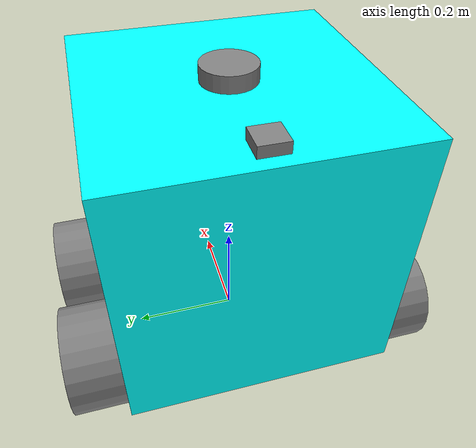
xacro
<?xml version="1.0" ?>
<!-- |    This document was autogenerated by xacro from /home/orion/IEEE_SEC_HW_Competition/sec_test_dev_humble_ws/install/sec_description/share/sec_description/description/sec_description.urdf.xacro | -->
<!-- |    EDITING THIS FILE BY HAND IS NOT RECOMMENDED                                 | -->
<robot name="sec_bot">
	<!-- Specify some standard inertial calculations https://en.wikipedia.org/wiki/List_of_moments_of_inertia -->
	<!-- These make use of xacro's mathematical functionality -->
	<!-- Base Footprint -->
	<link name="base_link">

    </link>
	<!-- Robot Base -->
	<link name="chassis">
		<visual>
			<origin rpy="0 0 0" xyz="0 0 0.25"/>
			<geometry>
				<box size="0.5 0.5 0.5"/>
			</geometry>
			<material name="Cyan">
				<color rgba="0 1.0 1.0 1.0"/>
			</material>
		</visual>
		<collision>
			<origin rpy="0 0 0" xyz="0 0 0.25"/>
			<geometry>
				<box size="0.5 0.5 0.5"/>
			</geometry>
		</collision>
		<inertial>
			<origin rpy="0 0 0" xyz="0 0 0.25"/>
			<mass value="10"/>
			<inertia ixx="0.41666666666666663" ixy="0.0" ixz="0.0" iyy="0.41666666666666663" iyz="0.0" izz="0.41666666666666663"/>
		</inertial>
	</link>
	<joint name="base_joint" type="fixed">
		<parent link="base_link"/>
		<child link="chassis"/>
		<origin rpy="0 0 0" xyz="0.0 0.0 0.05"/>
	</joint>
	<link name="b_l_wheel_link">
		<visual>
			<origin rpy="1.5707963267948966 0 0" xyz="0 0 0"/>
			<geometry>
				<cylinder length="0.1" radius="0.1"/>
			</geometry>
			<material name="Gray">
				<color rgba="0.5 0.5 0.5 1.0"/>
			</material>
		</visual>
		<collision>
			<origin rpy="1.5707963267948966 0 0" xyz="0 0 0"/>
			<geometry>
				<cylinder length="0.1" radius="0.1"/>
			</geometry>
		</collision>
		<inertial>
			<origin rpy="1.5707963267948966 0 0" xyz="0 0 0"/>
			<mass value="10"/>
			<inertia ixx="0.03333333333333334" ixy="0.0" ixz="0.0" iyy="0.03333333333333334" iyz="0.0" izz="0.05000000000000001"/>
		</inertial>
	</link>
	<joint name="b_l_wheel_joint" type="continuous">
		<parent link="chassis"/>
		<child link="b_l_wheel_link"/>
		<origin rpy="0 0 0" xyz="-0.125 0.3 0.03"/>
		<axis xyz="0 1 0"/>
	</joint>
	<gazebo reference="b_l_wheel_link">
		<material>Gazebo/Blue</material>
	</gazebo>
	<link name="b_r_wheel_link">
		<visual>
			<origin rpy="1.5707963267948966 0 0" xyz="0 0 0"/>
			<geometry>
				<cylinder length="0.1" radius="0.1"/>
			</geometry>
			<material name="Gray">
				<color rgba="0.5 0.5 0.5 1.0"/>
			</material>
		</visual>
		<collision>
			<origin rpy="1.5707963267948966 0 0" xyz="0 0 0"/>
			<geometry>
				<cylinder length="0.1" radius="0.1"/>
			</geometry>
		</collision>
		<inertial>
			<origin rpy="1.5707963267948966 0 0" xyz="0 0 0"/>
			<mass value="10"/>
			<inertia ixx="0.03333333333333334" ixy="0.0" ixz="0.0" iyy="0.03333333333333334" iyz="0.0" izz="0.05000000000000001"/>
		</inertial>
	</link>
	<joint name="b_r_wheel_joint" type="continuous">
		<parent link="chassis"/>
		<child link="b_r_wheel_link"/>
		<origin rpy="0 0 0" xyz="-0.125 -0.3 0.03"/>
		<axis xyz="0 1 0"/>
	</joint>
	<gazebo reference="b_r_wheel_link">
		<material>Gazebo/Blue</material>
	</gazebo>
	<link name="f_l_wheel_link">
		<visual>
			<origin rpy="1.5707963267948966 0 0" xyz="0 0 0"/>
			<geometry>
				<cylinder length="0.1" radius="0.1"/>
			</geometry>
			<material name="Gray">
				<color rgba="0.5 0.5 0.5 1.0"/>
			</material>
		</visual>
		<collision>
			<origin rpy="1.5707963267948966 0 0" xyz="0 0 0"/>
			<geometry>
				<cylinder length="0.1" radius="0.1"/>
			</geometry>
		</collision>
		<inertial>
			<origin rpy="1.5707963267948966 0 0" xyz="0 0 0"/>
			<mass value="10"/>
			<inertia ixx="0.03333333333333334" ixy="0.0" ixz="0.0" iyy="0.03333333333333334" iyz="0.0" izz="0.05000000000000001"/>
		</inertial>
	</link>
	<joint name="f_l_wheel_joint" type="continuous">
		<parent link="chassis"/>
		<child link="f_l_wheel_link"/>
		<origin rpy="0 0 0" xyz="0.125 0.3 0.03"/>
		<axis xyz="0 1 0"/>
	</joint>
	<gazebo reference="f_l_wheel_link">
		<material>Gazebo/Blue</material>
	</gazebo>
	<link name="f_r_wheel_link">
		<visual>
			<origin rpy="1.5707963267948966 0 0" xyz="0 0 0"/>
			<geometry>
				<cylinder length="0.1" radius="0.1"/>
			</geometry>
			<material name="Gray">
				<color rgba="0.5 0.5 0.5 1.0"/>
			</material>
		</visual>
		<collision>
			<origin rpy="1.5707963267948966 0 0" xyz="0 0 0"/>
			<geometry>
				<cylinder length="0.1" radius="0.1"/>
			</geometry>
		</collision>
		<inertial>
			<origin rpy="1.5707963267948966 0 0" xyz="0 0 0"/>
			<mass value="10"/>
			<inertia ixx="0.03333333333333334" ixy="0.0" ixz="0.0" iyy="0.03333333333333334" iyz="0.0" izz="0.05000000000000001"/>
		</inertial>
	</link>
	<joint name="f_r_wheel_joint" type="continuous">
		<parent link="chassis"/>
		<child link="f_r_wheel_link"/>
		<origin rpy="0 0 0" xyz="0.125 -0.3 0.03"/>
		<axis xyz="0 1 0"/>
	</joint>
	<gazebo reference="f_r_wheel_link">
		<material>Gazebo/Blue</material>
	</gazebo>
	<gazebo>
		<plugin filename="libgazebo_ros_diff_drive.so" name="four_wheeled_robot_diff_drive">
			<!-- Number of wheel pairs -->
			<num_wheel_pairs>2</num_wheel_pairs>
			<!-- wheels0 -->
			<left_joint>f_l_wheel_joint</left_joint>
			<right_joint>f_r_wheel_joint</right_joint>
			<!-- wheels1-->
			<left_joint>b_l_wheel_joint</left_joint>
			<right_joint>b_r_wheel_joint</right_joint>
			<!-- kinematics -->
			<wheel_separation>0.5</wheel_separation>
			<wheel_diameter>0.2</wheel_diameter>
			<!-- limits -->
			<max_wheel_torque>200</max_wheel_torque>
			<max_wheel_acceleration>10.0</max_wheel_acceleration>
			<!-- output -->
			<publish_odom>true</publish_odom>
			<publish_odom_tf>true</publish_odom_tf>
			<publish_wheel_tf>true</publish_wheel_tf>
			<odometry_frame>odom</odometry_frame>
			<robot_base_frame>base_link</robot_base_frame>
		</plugin>
	</gazebo>
	<joint name="camera_joint" type="fixed">
		<parent link="chassis"/>
		<child link="camera_link"/>
		<origin rpy="0 0 0" xyz="0.255 0 0.25"/>
	</joint>
	<link name="camera_link">
		<visual>
			<geometry>
				<box size="0.01 0.03 0.03"/>
			</geometry>
			<material name="Gray">
				<color rgba="0.5 0.5 0.5 1.0"/>
			</material>
		</visual>
		<inertial>
			<origin rpy="0 0 0" xyz="0 0 0"/>
			<mass value="0.7"/>
			<inertia ixx="0.00010499999999999999" ixy="0.0" ixz="0.0" iyy="5.8333333333333326e-05" iyz="0.0" izz="5.8333333333333326e-05"/>
		</inertial>
	</link>
	<joint name="camera_optical_joint" type="fixed">
		<parent link="camera_link"/>
		<child link="camera_link_optical"/>
		<origin rpy="-1.5707963267948966 0 -1.5707963267948966" xyz="0 0 0"/>
	</joint>
	<link name="camera_link_optical"/>
	<gazebo reference="camera_link">
		<material>Gazebo/Red</material>
		<sensor name="camera" type="camera">
			<pose> 0 0 0 0 0 0 </pose>
			<visualize>true</visualize>
			<update_rate>10</update_rate>
			<camera>
				<horizontal_fov>1.089</horizontal_fov>
				<image>
					<format>R8G8B8</format>
					<width>640</width>
					<height>480</height>
				</image>
				<clip>
					<near>0.05</near>
					<far>8.0</far>
				</clip>
			</camera>
			<plugin filename="libgazebo_ros_camera.so" name="camera_controller">
				<frame_name>camera_link_optical</frame_name>
			</plugin>
		</sensor>
	</gazebo>
	<joint name="imu_joint" type="fixed">
		<parent link="chassis"/>
		<child link="imu_link"/>
		<origin rpy="0 0 0" xyz="-0.2 0 0.51"/>
	</joint>
	<link name="imu_link">
		<visual>
			<geometry>
				<box size="0.05 0.05 0.02"/>
			</geometry>
			<material name="Gray">
				<color rgba="0.5 0.5 0.5 1.0"/>
			</material>
		</visual>
		<inertial>
			<origin rpy="0 0 0" xyz="0 0 0"/>
			<mass value="0.15"/>
			<inertia ixx="3.625000000000001e-05" ixy="0.0" ixz="0.0" iyy="3.625000000000001e-05" iyz="0.0" izz="6.25e-05"/>
		</inertial>
	</link>
	<gazebo reference="imu_link">
		<sensor name="br_imu" type="imu">
			<always_on>true</always_on>
			<update_rate>100</update_rate>
			<imu>
				<angular_velocity>
					<x>
						<noise type="gaussian">
							<mean>0.0</mean>
							<stddev>2e-4</stddev>
						</noise>
					</x>
					<y>
						<noise type="gaussian">
							<mean>0.0</mean>
							<stddev>2e-4</stddev>
						</noise>
					</y>
					<z>
						<noise type="gaussian">
							<mean>0.0</mean>
							<stddev>2e-4</stddev>
						</noise>
					</z>
				</angular_velocity>
				<linear_acceleration>
					<x>
						<noise type="gaussian">
							<mean>0.0</mean>
							<stddev>1.7e-2</stddev>
						</noise>
					</x>
					<y>
						<noise type="gaussian">
							<mean>0.0</mean>
							<stddev>1.7e-2</stddev>
						</noise>
					</y>
					<z>
						<noise type="gaussian">
							<mean>0.0</mean>
							<stddev>1.7e-2</stddev>
						</noise>
					</z>
				</linear_acceleration>
			</imu>
			<plugin filename="libgazebo_ros_imu_sensor.so" name="bytes_imu">
				<ros>
					<namespace>imu</namespace>
					<remapping>~/out:=data</remapping>
				</ros>
				<initial_orientation_as_reference>true</initial_orientation_as_reference>
			</plugin>
		</sensor>
	</gazebo>
	<joint name="lidar_joint" type="fixed">
		<parent link="chassis"/>
		<child link="lidar_link"/>
		<origin rpy="0 0 0" xyz="0 0 0.51"/>
	</joint>
	<link name="lidar_link">
		<visual>
			<geometry>
				<cylinder length="0.04" radius="0.05"/>
			</geometry>
			<material name="Gray">
				<color rgba="0.5 0.5 0.5 1.0"/>
			</material>
		</visual>
		<inertial>
			<origin rpy="0 0 0" xyz="0 0 0"/>
			<mass value="0.1"/>
			<inertia ixx="7.583333333333335e-05" ixy="0.0" ixz="0.0" iyy="7.583333333333335e-05" iyz="0.0" izz="0.00012500000000000003"/>
		</inertial>
	</link>
	<gazebo reference="lidar_link">
		<sensor name="laser" type="ray">
			<visualize>true</visualize>
			<pose>0.0 0 0.0 0 0 0</pose>
			<update_rate>10</update_rate>
			<ray>
				<scan>
					<horizontal>
						<samples>360</samples>
						<resolution>1</resolution>
						<min_angle>-3.14</min_angle>
						<max_angle>3.14</max_angle>
					</horizontal>
				</scan>
				<range>
					<min>0.3</min>
					<max>12</max>
					<resolution>0.01</resolution>
				</range>
			</ray>
			<plugin filename="libgazebo_ros_ray_sensor.so" name="laser_controller">
				<ros>
					<argument>~/out:=scan</argument>
				</ros>
				<output_type>sensor_msgs/LaserScan</output_type>
				<frame_name>lidar_link</frame_name>
			</plugin>
		</sensor>
	</gazebo>
</robot>
